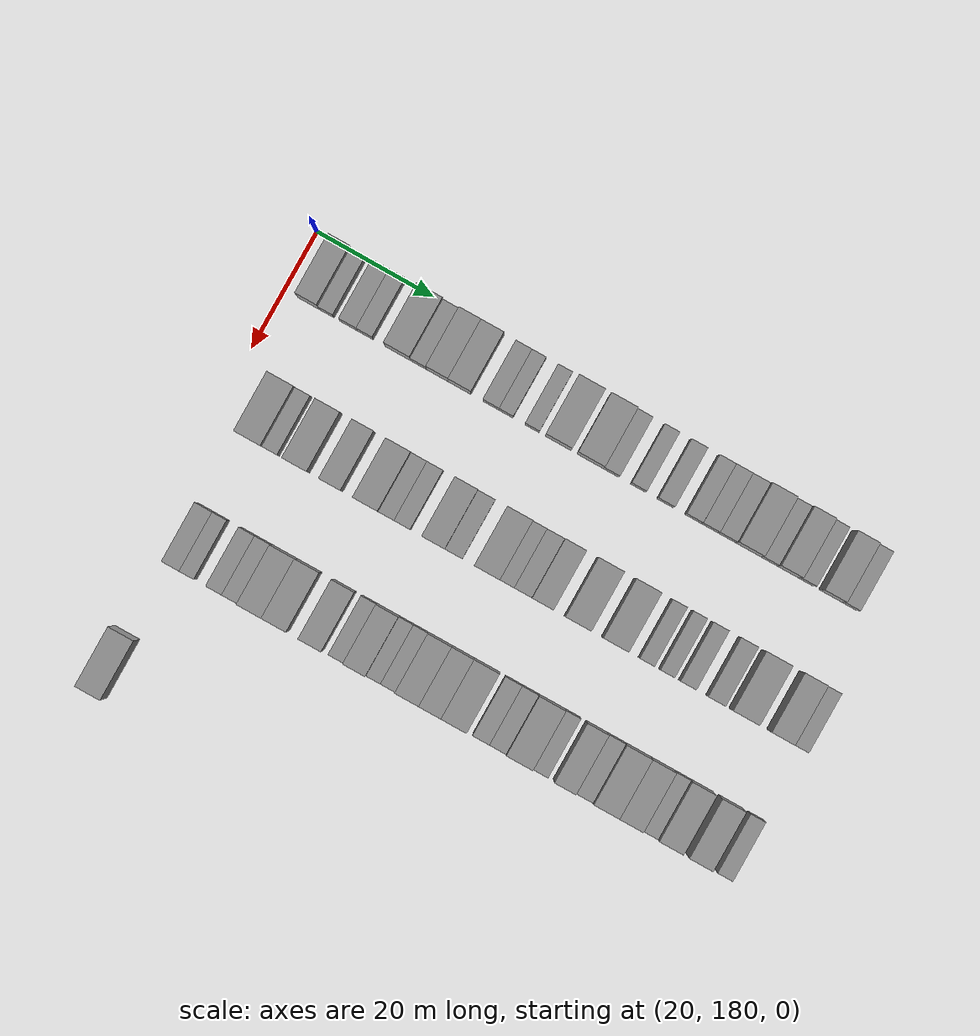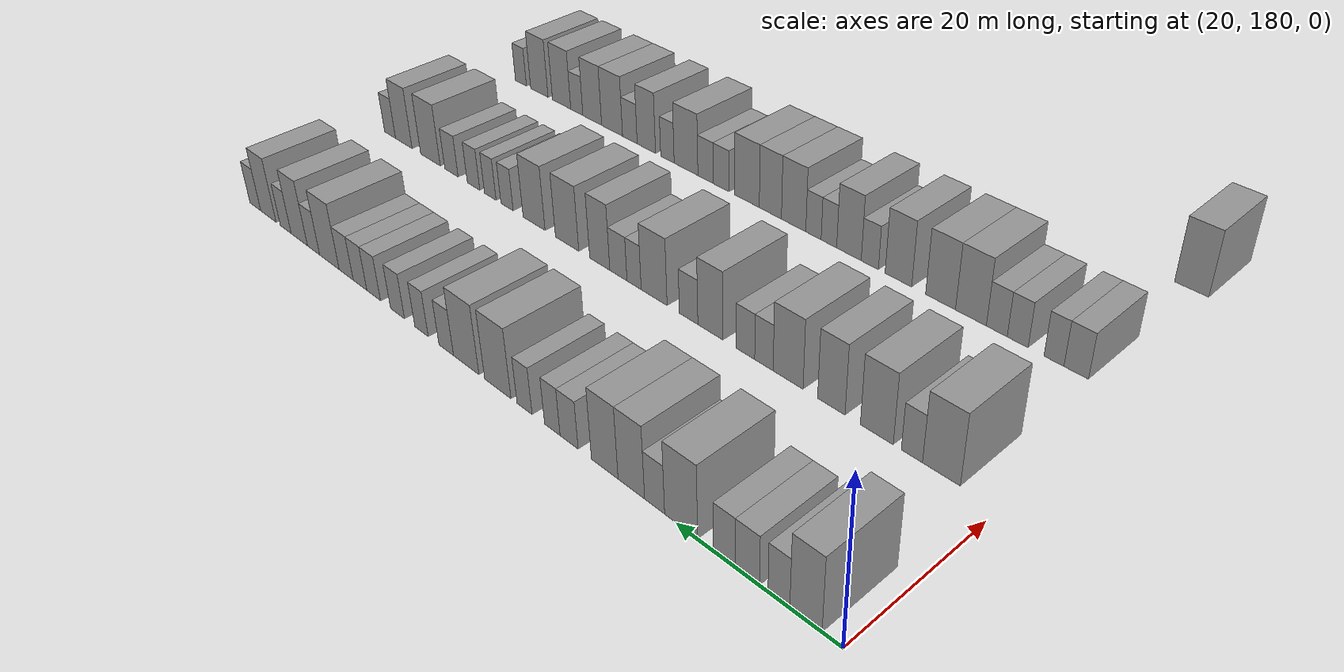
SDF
<sdf version="1.6">
 <world name="default">
  <model name="building_141">
   <static>1</static>
   <pose>25.0000 184.1704 0 0.000000 0.000000 0.000000</pose>
   <link name="link">
    <pose>0 0 4.50 0 0 0</pose>
    <collision name="collision"><geometry><box><size>10.0000 3.6568 9.0000</size></box></geometry></collision>
    <visual name="visual">
     <cast_shadows>0</cast_shadows>
     <geometry><box><size>10.0000 3.6568 9.0000</size></box></geometry>
     <material>
      <script>
       <uri>model://grey_wall/materials/scripts</uri>
       <uri>model://grey_wall/materials/textures</uri>
       <name>vrc/grey_wall</name>
      </script>
     </material>
    </visual>
   </link>
  </model>
  <model name="building_142">
   <static>1</static>
   <pose>25.0000 187.2726 0 0.000000 0.000000 0.000000</pose>
   <link name="link">
    <pose>0 0 3.00 0 0 0</pose>
    <collision name="collision"><geometry><box><size>10.0000 2.5475 6.0000</size></box></geometry></collision>
    <visual name="visual">
     <cast_shadows>0</cast_shadows>
     <geometry><box><size>10.0000 2.5475 6.0000</size></box></geometry>
     <material>
      <script>
       <uri>model://grey_wall/materials/scripts</uri>
       <uri>model://grey_wall/materials/textures</uri>
       <name>vrc/grey_wall</name>
      </script>
     </material>
    </visual>
   </link>
  </model>
  <model name="building_143">
   <static>1</static>
   <pose>25.0000 191.0220 0 0.000000 0.000000 0.000000</pose>
   <link name="link">
    <pose>0 0 3.00 0 0 0</pose>
    <collision name="collision"><geometry><box><size>10.0000 2.9514 6.0000</size></box></geometry></collision>
    <visual name="visual">
     <cast_shadows>0</cast_shadows>
     <geometry><box><size>10.0000 2.9514 6.0000</size></box></geometry>
     <material>
      <script>
       <uri>model://grey_wall/materials/scripts</uri>
       <uri>model://grey_wall/materials/textures</uri>
       <name>vrc/grey_wall</name>
      </script>
     </material>
    </visual>
   </link>
  </model>
  <model name="building_144">
   <static>1</static>
   <pose>25.0000 193.8629 0 0.000000 0.000000 0.000000</pose>
   <link name="link">
    <pose>0 0 3.00 0 0 0</pose>
    <collision name="collision"><geometry><box><size>10.0000 2.7303 6.0000</size></box></geometry></collision>
    <visual name="visual">
     <cast_shadows>0</cast_shadows>
     <geometry><box><size>10.0000 2.7303 6.0000</size></box></geometry>
     <material>
      <script>
       <uri>model://grey_wall/materials/scripts</uri>
       <uri>model://grey_wall/materials/textures</uri>
       <name>vrc/grey_wall</name>
      </script>
     </material>
    </visual>
   </link>
  </model>
  <model name="building_145">
   <static>1</static>
   <pose>25.0000 199.4103 0 0.000000 0.000000 0.000000</pose>
   <link name="link">
    <pose>0 0 4.50 0 0 0</pose>
    <collision name="collision"><geometry><box><size>10.0000 4.3644 9.0000</size></box></geometry></collision>
    <visual name="visual">
     <cast_shadows>0</cast_shadows>
     <geometry><box><size>10.0000 4.3644 9.0000</size></box></geometry>
     <material>
      <script>
       <uri>model://grey_wall/materials/scripts</uri>
       <uri>model://grey_wall/materials/textures</uri>
       <name>vrc/grey_wall</name>
      </script>
     </material>
    </visual>
   </link>
  </model>
  <model name="building_146">
   <static>1</static>
   <pose>25.0000 202.9584 0 0.000000 0.000000 0.000000</pose>
   <link name="link">
    <pose>0 0 3.00 0 0 0</pose>
    <collision name="collision"><geometry><box><size>10.0000 2.7317 6.0000</size></box></geometry></collision>
    <visual name="visual">
     <cast_shadows>0</cast_shadows>
     <geometry><box><size>10.0000 2.7317 6.0000</size></box></geometry>
     <material>
      <script>
       <uri>model://grey_wall/materials/scripts</uri>
       <uri>model://grey_wall/materials/textures</uri>
       <name>vrc/grey_wall</name>
      </script>
     </material>
    </visual>
   </link>
  </model>
  <model name="building_147">
   <static>1</static>
   <pose>25.0000 206.1901 0 0.000000 0.000000 0.000000</pose>
   <link name="link">
    <pose>0 0 4.50 0 0 0</pose>
    <collision name="collision"><geometry><box><size>10.0000 3.7318 9.0000</size></box></geometry></collision>
    <visual name="visual">
     <cast_shadows>0</cast_shadows>
     <geometry><box><size>10.0000 3.7318 9.0000</size></box></geometry>
     <material>
      <script>
       <uri>model://grey_wall/materials/scripts</uri>
       <uri>model://grey_wall/materials/textures</uri>
       <name>vrc/grey_wall</name>
      </script>
     </material>
    </visual>
   </link>
  </model>
  <model name="building_148">
   <static>1</static>
   <pose>25.0000 209.9947 0 0.000000 0.000000 0.000000</pose>
   <link name="link">
    <pose>0 0 4.50 0 0 0</pose>
    <collision name="collision"><geometry><box><size>10.0000 3.8773 9.0000</size></box></geometry></collision>
    <visual name="visual">
     <cast_shadows>0</cast_shadows>
     <geometry><box><size>10.0000 3.8773 9.0000</size></box></geometry>
     <material>
      <script>
       <uri>model://grey_wall/materials/scripts</uri>
       <uri>model://grey_wall/materials/textures</uri>
       <name>vrc/grey_wall</name>
      </script>
     </material>
    </visual>
   </link>
  </model>
  <model name="building_149">
   <static>1</static>
   <pose>25.0000 215.3113 0 0.000000 0.000000 0.000000</pose>
   <link name="link">
    <pose>0 0 3.00 0 0 0</pose>
    <collision name="collision"><geometry><box><size>10.0000 2.7558 6.0000</size></box></geometry></collision>
    <visual name="visual">
     <cast_shadows>0</cast_shadows>
     <geometry><box><size>10.0000 2.7558 6.0000</size></box></geometry>
     <material>
      <script>
       <uri>model://grey_wall/materials/scripts</uri>
       <uri>model://grey_wall/materials/textures</uri>
       <name>vrc/grey_wall</name>
      </script>
     </material>
    </visual>
   </link>
  </model>
  <model name="building_150">
   <static>1</static>
   <pose>25.0000 217.9012 0 0.000000 0.000000 0.000000</pose>
   <link name="link">
    <pose>0 0 3.00 0 0 0</pose>
    <collision name="collision"><geometry><box><size>10.0000 2.4242 6.0000</size></box></geometry></collision>
    <visual name="visual">
     <cast_shadows>0</cast_shadows>
     <geometry><box><size>10.0000 2.4242 6.0000</size></box></geometry>
     <material>
      <script>
       <uri>model://grey_wall/materials/scripts</uri>
       <uri>model://grey_wall/materials/textures</uri>
       <name>vrc/grey_wall</name>
      </script>
     </material>
    </visual>
   </link>
  </model>
  <model name="building_151">
   <static>1</static>
   <pose>25.0000 222.3371 0 0.000000 0.000000 0.000000</pose>
   <link name="link">
    <pose>0 0 3.00 0 0 0</pose>
    <collision name="collision"><geometry><box><size>10.0000 2.4476 6.0000</size></box></geometry></collision>
    <visual name="visual">
     <cast_shadows>0</cast_shadows>
     <geometry><box><size>10.0000 2.4476 6.0000</size></box></geometry>
     <material>
      <script>
       <uri>model://grey_wall/materials/scripts</uri>
       <uri>model://grey_wall/materials/textures</uri>
       <name>vrc/grey_wall</name>
      </script>
     </material>
    </visual>
   </link>
  </model>
  <model name="building_152">
   <static>1</static>
   <pose>25.0000 226.7826 0 0.000000 0.000000 0.000000</pose>
   <link name="link">
    <pose>0 0 4.50 0 0 0</pose>
    <collision name="collision"><geometry><box><size>10.0000 4.4432 9.0000</size></box></geometry></collision>
    <visual name="visual">
     <cast_shadows>0</cast_shadows>
     <geometry><box><size>10.0000 4.4432 9.0000</size></box></geometry>
     <material>
      <script>
       <uri>model://grey_wall/materials/scripts</uri>
       <uri>model://grey_wall/materials/textures</uri>
       <name>vrc/grey_wall</name>
      </script>
     </material>
    </visual>
   </link>
  </model>
  <model name="building_153">
   <static>1</static>
   <pose>25.0000 232.2535 0 0.000000 0.000000 0.000000</pose>
   <link name="link">
    <pose>0 0 4.50 0 0 0</pose>
    <collision name="collision"><geometry><box><size>10.0000 4.4986 9.0000</size></box></geometry></collision>
    <visual name="visual">
     <cast_shadows>0</cast_shadows>
     <geometry><box><size>10.0000 4.4986 9.0000</size></box></geometry>
     <material>
      <script>
       <uri>model://grey_wall/materials/scripts</uri>
       <uri>model://grey_wall/materials/textures</uri>
       <name>vrc/grey_wall</name>
      </script>
     </material>
    </visual>
   </link>
  </model>
  <model name="building_154">
   <static>1</static>
   <pose>25.0000 235.8311 0 0.000000 0.000000 0.000000</pose>
   <link name="link">
    <pose>0 0 3.00 0 0 0</pose>
    <collision name="collision"><geometry><box><size>10.0000 2.6566 6.0000</size></box></geometry></collision>
    <visual name="visual">
     <cast_shadows>0</cast_shadows>
     <geometry><box><size>10.0000 2.6566 6.0000</size></box></geometry>
     <material>
      <script>
       <uri>model://grey_wall/materials/scripts</uri>
       <uri>model://grey_wall/materials/textures</uri>
       <name>vrc/grey_wall</name>
      </script>
     </material>
    </visual>
   </link>
  </model>
  <model name="building_155">
   <static>1</static>
   <pose>25.0000 240.4203 0 0.000000 0.000000 0.000000</pose>
   <link name="link">
    <pose>0 0 3.00 0 0 0</pose>
    <collision name="collision"><geometry><box><size>10.0000 2.5218 6.0000</size></box></geometry></collision>
    <visual name="visual">
     <cast_shadows>0</cast_shadows>
     <geometry><box><size>10.0000 2.5218 6.0000</size></box></geometry>
     <material>
      <script>
       <uri>model://grey_wall/materials/scripts</uri>
       <uri>model://grey_wall/materials/textures</uri>
       <name>vrc/grey_wall</name>
      </script>
     </material>
    </visual>
   </link>
  </model>
  <model name="building_156">
   <static>1</static>
   <pose>25.0000 245.0591 0 0.000000 0.000000 0.000000</pose>
   <link name="link">
    <pose>0 0 3.00 0 0 0</pose>
    <collision name="collision"><geometry><box><size>10.0000 2.7556 6.0000</size></box></geometry></collision>
    <visual name="visual">
     <cast_shadows>0</cast_shadows>
     <geometry><box><size>10.0000 2.7556 6.0000</size></box></geometry>
     <material>
      <script>
       <uri>model://grey_wall/materials/scripts</uri>
       <uri>model://grey_wall/materials/textures</uri>
       <name>vrc/grey_wall</name>
      </script>
     </material>
    </visual>
   </link>
  </model>
  <model name="building_157">
   <static>1</static>
   <pose>25.0000 249.8324 0 0.000000 0.000000 0.000000</pose>
   <link name="link">
    <pose>0 0 3.00 0 0 0</pose>
    <collision name="collision"><geometry><box><size>10.0000 2.7912 6.0000</size></box></geometry></collision>
    <visual name="visual">
     <cast_shadows>0</cast_shadows>
     <geometry><box><size>10.0000 2.7912 6.0000</size></box></geometry>
     <material>
      <script>
       <uri>model://grey_wall/materials/scripts</uri>
       <uri>model://grey_wall/materials/textures</uri>
       <name>vrc/grey_wall</name>
      </script>
     </material>
    </visual>
   </link>
  </model>
  <model name="building_158">
   <static>1</static>
   <pose>25.0000 252.6497 0 0.000000 0.000000 0.000000</pose>
   <link name="link">
    <pose>0 0 3.00 0 0 0</pose>
    <collision name="collision"><geometry><box><size>10.0000 2.8433 6.0000</size></box></geometry></collision>
    <visual name="visual">
     <cast_shadows>0</cast_shadows>
     <geometry><box><size>10.0000 2.8433 6.0000</size></box></geometry>
     <material>
      <script>
       <uri>model://grey_wall/materials/scripts</uri>
       <uri>model://grey_wall/materials/textures</uri>
       <name>vrc/grey_wall</name>
      </script>
     </material>
    </visual>
   </link>
  </model>
  <model name="building_159">
   <static>1</static>
   <pose>25.0000 255.5650 0 0.000000 0.000000 0.000000</pose>
   <link name="link">
    <pose>0 0 3.00 0 0 0</pose>
    <collision name="collision"><geometry><box><size>10.0000 2.9873 6.0000</size></box></geometry></collision>
    <visual name="visual">
     <cast_shadows>0</cast_shadows>
     <geometry><box><size>10.0000 2.9873 6.0000</size></box></geometry>
     <material>
      <script>
       <uri>model://grey_wall/materials/scripts</uri>
       <uri>model://grey_wall/materials/textures</uri>
       <name>vrc/grey_wall</name>
      </script>
     </material>
    </visual>
   </link>
  </model>
  <model name="building_160">
   <static>1</static>
   <pose>25.0000 259.2042 0 0.000000 0.000000 0.000000</pose>
   <link name="link">
    <pose>0 0 4.50 0 0 0</pose>
    <collision name="collision"><geometry><box><size>10.0000 4.2912 9.0000</size></box></geometry></collision>
    <visual name="visual">
     <cast_shadows>0</cast_shadows>
     <geometry><box><size>10.0000 4.2912 9.0000</size></box></geometry>
     <material>
      <script>
       <uri>model://grey_wall/materials/scripts</uri>
       <uri>model://grey_wall/materials/textures</uri>
       <name>vrc/grey_wall</name>
      </script>
     </material>
    </visual>
   </link>
  </model>
  <model name="building_161">
   <static>1</static>
   <pose>25.0000 262.7184 0 0.000000 0.000000 0.000000</pose>
   <link name="link">
    <pose>0 0 3.00 0 0 0</pose>
    <collision name="collision"><geometry><box><size>10.0000 2.7372 6.0000</size></box></geometry></collision>
    <visual name="visual">
     <cast_shadows>0</cast_shadows>
     <geometry><box><size>10.0000 2.7372 6.0000</size></box></geometry>
     <material>
      <script>
       <uri>model://grey_wall/materials/scripts</uri>
       <uri>model://grey_wall/materials/textures</uri>
       <name>vrc/grey_wall</name>
      </script>
     </material>
    </visual>
   </link>
  </model>
  <model name="building_162">
   <static>1</static>
   <pose>25.0000 265.9661 0 0.000000 0.000000 0.000000</pose>
   <link name="link">
    <pose>0 0 4.50 0 0 0</pose>
    <collision name="collision"><geometry><box><size>10.0000 3.7582 9.0000</size></box></geometry></collision>
    <visual name="visual">
     <cast_shadows>0</cast_shadows>
     <geometry><box><size>10.0000 3.7582 9.0000</size></box></geometry>
     <material>
      <script>
       <uri>model://grey_wall/materials/scripts</uri>
       <uri>model://grey_wall/materials/textures</uri>
       <name>vrc/grey_wall</name>
      </script>
     </material>
    </visual>
   </link>
  </model>
  <model name="building_163">
   <static>1</static>
   <pose>25.0000 269.1298 0 0.000000 0.000000 0.000000</pose>
   <link name="link">
    <pose>0 0 3.00 0 0 0</pose>
    <collision name="collision"><geometry><box><size>10.0000 2.5691 6.0000</size></box></geometry></collision>
    <visual name="visual">
     <cast_shadows>0</cast_shadows>
     <geometry><box><size>10.0000 2.5691 6.0000</size></box></geometry>
     <material>
      <script>
       <uri>model://grey_wall/materials/scripts</uri>
       <uri>model://grey_wall/materials/textures</uri>
       <name>vrc/grey_wall</name>
      </script>
     </material>
    </visual>
   </link>
  </model>
  <model name="building_164">
   <static>1</static>
   <pose>25.0000 273.2810 0 0.000000 0.000000 0.000000</pose>
   <link name="link">
    <pose>0 0 4.50 0 0 0</pose>
    <collision name="collision"><geometry><box><size>10.0000 3.7334 9.0000</size></box></geometry></collision>
    <visual name="visual">
     <cast_shadows>0</cast_shadows>
     <geometry><box><size>10.0000 3.7334 9.0000</size></box></geometry>
     <material>
      <script>
       <uri>model://grey_wall/materials/scripts</uri>
       <uri>model://grey_wall/materials/textures</uri>
       <name>vrc/grey_wall</name>
      </script>
     </material>
    </visual>
   </link>
  </model>
  <model name="building_165">
   <static>1</static>
   <pose>25.0000 276.4773 0 0.000000 0.000000 0.000000</pose>
   <link name="link">
    <pose>0 0 3.00 0 0 0</pose>
    <collision name="collision"><geometry><box><size>10.0000 2.6591 6.0000</size></box></geometry></collision>
    <visual name="visual">
     <cast_shadows>0</cast_shadows>
     <geometry><box><size>10.0000 2.6591 6.0000</size></box></geometry>
     <material>
      <script>
       <uri>model://grey_wall/materials/scripts</uri>
       <uri>model://grey_wall/materials/textures</uri>
       <name>vrc/grey_wall</name>
      </script>
     </material>
    </visual>
   </link>
  </model>
  <model name="building_336">
   <static>1</static>
   <pose>47.0000 186.6456 0 0.000000 0.000000 0.000000</pose>
   <link name="link">
    <pose>0 0 4.50 0 0 0</pose>
    <collision name="collision"><geometry><box><size>10.0000 4.4907 9.0000</size></box></geometry></collision>
    <visual name="visual">
     <cast_shadows>0</cast_shadows>
     <geometry><box><size>10.0000 4.4907 9.0000</size></box></geometry>
     <material>
      <script>
       <uri>model://grey_wall/materials/scripts</uri>
       <uri>model://grey_wall/materials/textures</uri>
       <name>vrc/grey_wall</name>
      </script>
     </material>
    </visual>
   </link>
  </model>
  <model name="building_337">
   <static>1</static>
   <pose>47.0000 190.1841 0 0.000000 0.000000 0.000000</pose>
   <link name="link">
    <pose>0 0 3.00 0 0 0</pose>
    <collision name="collision"><geometry><box><size>10.0000 2.5864 6.0000</size></box></geometry></collision>
    <visual name="visual">
     <cast_shadows>0</cast_shadows>
     <geometry><box><size>10.0000 2.5864 6.0000</size></box></geometry>
     <material>
      <script>
       <uri>model://grey_wall/materials/scripts</uri>
       <uri>model://grey_wall/materials/textures</uri>
       <name>vrc/grey_wall</name>
      </script>
     </material>
    </visual>
   </link>
  </model>
  <model name="building_338">
   <static>1</static>
   <pose>47.0000 194.5684 0 0.000000 0.000000 0.000000</pose>
   <link name="link">
    <pose>0 0 4.50 0 0 0</pose>
    <collision name="collision"><geometry><box><size>10.0000 4.1822 9.0000</size></box></geometry></collision>
    <visual name="visual">
     <cast_shadows>0</cast_shadows>
     <geometry><box><size>10.0000 4.1822 9.0000</size></box></geometry>
     <material>
      <script>
       <uri>model://grey_wall/materials/scripts</uri>
       <uri>model://grey_wall/materials/textures</uri>
       <name>vrc/grey_wall</name>
      </script>
     </material>
    </visual>
   </link>
  </model>
  <model name="building_339">
   <static>1</static>
   <pose>47.0000 200.4982 0 0.000000 0.000000 0.000000</pose>
   <link name="link">
    <pose>0 0 4.50 0 0 0</pose>
    <collision name="collision"><geometry><box><size>10.0000 3.6774 9.0000</size></box></geometry></collision>
    <visual name="visual">
     <cast_shadows>0</cast_shadows>
     <geometry><box><size>10.0000 3.6774 9.0000</size></box></geometry>
     <material>
      <script>
       <uri>model://grey_wall/materials/scripts</uri>
       <uri>model://grey_wall/materials/textures</uri>
       <name>vrc/grey_wall</name>
      </script>
     </material>
    </visual>
   </link>
  </model>
  <model name="building_340">
   <static>1</static>
   <pose>47.0000 206.4493 0 0.000000 0.000000 0.000000</pose>
   <link name="link">
    <pose>0 0 4.50 0 0 0</pose>
    <collision name="collision"><geometry><box><size>10.0000 4.2248 9.0000</size></box></geometry></collision>
    <visual name="visual">
     <cast_shadows>0</cast_shadows>
     <geometry><box><size>10.0000 4.2248 9.0000</size></box></geometry>
     <material>
      <script>
       <uri>model://grey_wall/materials/scripts</uri>
       <uri>model://grey_wall/materials/textures</uri>
       <name>vrc/grey_wall</name>
      </script>
     </material>
    </visual>
   </link>
  </model>
  <model name="building_341">
   <static>1</static>
   <pose>47.0000 209.8967 0 0.000000 0.000000 0.000000</pose>
   <link name="link">
    <pose>0 0 3.00 0 0 0</pose>
    <collision name="collision"><geometry><box><size>10.0000 2.6700 6.0000</size></box></geometry></collision>
    <visual name="visual">
     <cast_shadows>0</cast_shadows>
     <geometry><box><size>10.0000 2.6700 6.0000</size></box></geometry>
     <material>
      <script>
       <uri>model://grey_wall/materials/scripts</uri>
       <uri>model://grey_wall/materials/textures</uri>
       <name>vrc/grey_wall</name>
      </script>
     </material>
    </visual>
   </link>
  </model>
  <model name="building_342">
   <static>1</static>
   <pose>47.0000 212.6028 0 0.000000 0.000000 0.000000</pose>
   <link name="link">
    <pose>0 0 3.00 0 0 0</pose>
    <collision name="collision"><geometry><box><size>10.0000 2.7420 6.0000</size></box></geometry></collision>
    <visual name="visual">
     <cast_shadows>0</cast_shadows>
     <geometry><box><size>10.0000 2.7420 6.0000</size></box></geometry>
     <material>
      <script>
       <uri>model://grey_wall/materials/scripts</uri>
       <uri>model://grey_wall/materials/textures</uri>
       <name>vrc/grey_wall</name>
      </script>
     </material>
    </visual>
   </link>
  </model>
  <model name="building_343">
   <static>1</static>
   <pose>47.0000 217.9217 0 0.000000 0.000000 0.000000</pose>
   <link name="link">
    <pose>0 0 4.50 0 0 0</pose>
    <collision name="collision"><geometry><box><size>10.0000 3.8960 9.0000</size></box></geometry></collision>
    <visual name="visual">
     <cast_shadows>0</cast_shadows>
     <geometry><box><size>10.0000 3.8960 9.0000</size></box></geometry>
     <material>
      <script>
       <uri>model://grey_wall/materials/scripts</uri>
       <uri>model://grey_wall/materials/textures</uri>
       <name>vrc/grey_wall</name>
      </script>
     </material>
    </visual>
   </link>
  </model>
  <model name="building_344">
   <static>1</static>
   <pose>47.0000 221.3405 0 0.000000 0.000000 0.000000</pose>
   <link name="link">
    <pose>0 0 3.00 0 0 0</pose>
    <collision name="collision"><geometry><box><size>10.0000 2.9415 6.0000</size></box></geometry></collision>
    <visual name="visual">
     <cast_shadows>0</cast_shadows>
     <geometry><box><size>10.0000 2.9415 6.0000</size></box></geometry>
     <material>
      <script>
       <uri>model://grey_wall/materials/scripts</uri>
       <uri>model://grey_wall/materials/textures</uri>
       <name>vrc/grey_wall</name>
      </script>
     </material>
    </visual>
   </link>
  </model>
  <model name="building_345">
   <static>1</static>
   <pose>47.0000 226.9701 0 0.000000 0.000000 0.000000</pose>
   <link name="link">
    <pose>0 0 4.50 0 0 0</pose>
    <collision name="collision"><geometry><box><size>10.0000 4.3176 9.0000</size></box></geometry></collision>
    <visual name="visual">
     <cast_shadows>0</cast_shadows>
     <geometry><box><size>10.0000 4.3176 9.0000</size></box></geometry>
     <material>
      <script>
       <uri>model://grey_wall/materials/scripts</uri>
       <uri>model://grey_wall/materials/textures</uri>
       <name>vrc/grey_wall</name>
      </script>
     </material>
    </visual>
   </link>
  </model>
  <model name="building_346">
   <static>1</static>
   <pose>47.0000 230.3441 0 0.000000 0.000000 0.000000</pose>
   <link name="link">
    <pose>0 0 3.00 0 0 0</pose>
    <collision name="collision"><geometry><box><size>10.0000 2.4305 6.0000</size></box></geometry></collision>
    <visual name="visual">
     <cast_shadows>0</cast_shadows>
     <geometry><box><size>10.0000 2.4305 6.0000</size></box></geometry>
     <material>
      <script>
       <uri>model://grey_wall/materials/scripts</uri>
       <uri>model://grey_wall/materials/textures</uri>
       <name>vrc/grey_wall</name>
      </script>
     </material>
    </visual>
   </link>
  </model>
  <model name="building_347">
   <static>1</static>
   <pose>47.0000 233.0564 0 0.000000 0.000000 0.000000</pose>
   <link name="link">
    <pose>0 0 3.00 0 0 0</pose>
    <collision name="collision"><geometry><box><size>10.0000 2.9942 6.0000</size></box></geometry></collision>
    <visual name="visual">
     <cast_shadows>0</cast_shadows>
     <geometry><box><size>10.0000 2.9942 6.0000</size></box></geometry>
     <material>
      <script>
       <uri>model://grey_wall/materials/scripts</uri>
       <uri>model://grey_wall/materials/textures</uri>
       <name>vrc/grey_wall</name>
      </script>
     </material>
    </visual>
   </link>
  </model>
  <model name="building_348">
   <static>1</static>
   <pose>47.0000 236.3539 0 0.000000 0.000000 0.000000</pose>
   <link name="link">
    <pose>0 0 4.50 0 0 0</pose>
    <collision name="collision"><geometry><box><size>10.0000 3.6007 9.0000</size></box></geometry></collision>
    <visual name="visual">
     <cast_shadows>0</cast_shadows>
     <geometry><box><size>10.0000 3.6007 9.0000</size></box></geometry>
     <material>
      <script>
       <uri>model://grey_wall/materials/scripts</uri>
       <uri>model://grey_wall/materials/textures</uri>
       <name>vrc/grey_wall</name>
      </script>
     </material>
    </visual>
   </link>
  </model>
  <model name="building_349">
   <static>1</static>
   <pose>47.0000 242.3327 0 0.000000 0.000000 0.000000</pose>
   <link name="link">
    <pose>0 0 4.50 0 0 0</pose>
    <collision name="collision"><geometry><box><size>10.0000 4.3569 9.0000</size></box></geometry></collision>
    <visual name="visual">
     <cast_shadows>0</cast_shadows>
     <geometry><box><size>10.0000 4.3569 9.0000</size></box></geometry>
     <material>
      <script>
       <uri>model://grey_wall/materials/scripts</uri>
       <uri>model://grey_wall/materials/textures</uri>
       <name>vrc/grey_wall</name>
      </script>
     </material>
    </visual>
   </link>
  </model>
  <model name="building_350">
   <static>1</static>
   <pose>47.0000 248.6556 0 0.000000 0.000000 0.000000</pose>
   <link name="link">
    <pose>0 0 4.50 0 0 0</pose>
    <collision name="collision"><geometry><box><size>10.0000 4.2888 9.0000</size></box></geometry></collision>
    <visual name="visual">
     <cast_shadows>0</cast_shadows>
     <geometry><box><size>10.0000 4.2888 9.0000</size></box></geometry>
     <material>
      <script>
       <uri>model://grey_wall/materials/scripts</uri>
       <uri>model://grey_wall/materials/textures</uri>
       <name>vrc/grey_wall</name>
      </script>
     </material>
    </visual>
   </link>
  </model>
  <model name="building_351">
   <static>1</static>
   <pose>47.0000 254.0440 0 0.000000 0.000000 0.000000</pose>
   <link name="link">
    <pose>0 0 3.00 0 0 0</pose>
    <collision name="collision"><geometry><box><size>10.0000 2.4880 6.0000</size></box></geometry></collision>
    <visual name="visual">
     <cast_shadows>0</cast_shadows>
     <geometry><box><size>10.0000 2.4880 6.0000</size></box></geometry>
     <material>
      <script>
       <uri>model://grey_wall/materials/scripts</uri>
       <uri>model://grey_wall/materials/textures</uri>
       <name>vrc/grey_wall</name>
      </script>
     </material>
    </visual>
   </link>
  </model>
  <model name="building_352">
   <static>1</static>
   <pose>47.0000 257.4914 0 0.000000 0.000000 0.000000</pose>
   <link name="link">
    <pose>0 0 3.00 0 0 0</pose>
    <collision name="collision"><geometry><box><size>10.0000 2.4069 6.0000</size></box></geometry></collision>
    <visual name="visual">
     <cast_shadows>0</cast_shadows>
     <geometry><box><size>10.0000 2.4069 6.0000</size></box></geometry>
     <material>
      <script>
       <uri>model://grey_wall/materials/scripts</uri>
       <uri>model://grey_wall/materials/textures</uri>
       <name>vrc/grey_wall</name>
      </script>
     </material>
    </visual>
   </link>
  </model>
  <model name="building_353">
   <static>1</static>
   <pose>47.0000 261.0275 0 0.000000 0.000000 0.000000</pose>
   <link name="link">
    <pose>0 0 3.00 0 0 0</pose>
    <collision name="collision"><geometry><box><size>10.0000 2.6653 6.0000</size></box></geometry></collision>
    <visual name="visual">
     <cast_shadows>0</cast_shadows>
     <geometry><box><size>10.0000 2.6653 6.0000</size></box></geometry>
     <material>
      <script>
       <uri>model://grey_wall/materials/scripts</uri>
       <uri>model://grey_wall/materials/textures</uri>
       <name>vrc/grey_wall</name>
      </script>
     </material>
    </visual>
   </link>
  </model>
  <model name="building_354">
   <static>1</static>
   <pose>47.0000 265.8358 0 0.000000 0.000000 0.000000</pose>
   <link name="link">
    <pose>0 0 3.00 0 0 0</pose>
    <collision name="collision"><geometry><box><size>10.0000 2.9512 6.0000</size></box></geometry></collision>
    <visual name="visual">
     <cast_shadows>0</cast_shadows>
     <geometry><box><size>10.0000 2.9512 6.0000</size></box></geometry>
     <material>
      <script>
       <uri>model://grey_wall/materials/scripts</uri>
       <uri>model://grey_wall/materials/textures</uri>
       <name>vrc/grey_wall</name>
      </script>
     </material>
    </visual>
   </link>
  </model>
  <model name="building_355">
   <static>1</static>
   <pose>47.0000 270.5517 0 0.000000 0.000000 0.000000</pose>
   <link name="link">
    <pose>0 0 4.50 0 0 0</pose>
    <collision name="collision"><geometry><box><size>10.0000 4.4806 9.0000</size></box></geometry></collision>
    <visual name="visual">
     <cast_shadows>0</cast_shadows>
     <geometry><box><size>10.0000 4.4806 9.0000</size></box></geometry>
     <material>
      <script>
       <uri>model://grey_wall/materials/scripts</uri>
       <uri>model://grey_wall/materials/textures</uri>
       <name>vrc/grey_wall</name>
      </script>
     </material>
    </visual>
   </link>
  </model>
  <model name="building_356">
   <static>1</static>
   <pose>47.0000 276.7595 0 0.000000 0.000000 0.000000</pose>
   <link name="link">
    <pose>0 0 4.50 0 0 0</pose>
    <collision name="collision"><geometry><box><size>10.0000 3.9350 9.0000</size></box></geometry></collision>
    <visual name="visual">
     <cast_shadows>0</cast_shadows>
     <geometry><box><size>10.0000 3.9350 9.0000</size></box></geometry>
     <material>
      <script>
       <uri>model://grey_wall/materials/scripts</uri>
       <uri>model://grey_wall/materials/textures</uri>
       <name>vrc/grey_wall</name>
      </script>
     </material>
    </visual>
   </link>
  </model>
  <model name="building_357">
   <static>1</static>
   <pose>47.0000 280.0479 0 0.000000 0.000000 0.000000</pose>
   <link name="link">
    <pose>0 0 3.00 0 0 0</pose>
    <collision name="collision"><geometry><box><size>10.0000 2.6418 6.0000</size></box></geometry></collision>
    <visual name="visual">
     <cast_shadows>0</cast_shadows>
     <geometry><box><size>10.0000 2.6418 6.0000</size></box></geometry>
     <material>
      <script>
       <uri>model://grey_wall/materials/scripts</uri>
       <uri>model://grey_wall/materials/textures</uri>
       <name>vrc/grey_wall</name>
      </script>
     </material>
    </visual>
   </link>
  </model>
  <model name="building_518">
   <static>1</static>
   <pose>69.0000 185.7553 0 0.000000 0.000000 0.000000</pose>
   <link name="link">
    <pose>0 0 3.00 0 0 0</pose>
    <collision name="collision"><geometry><box><size>10.0000 2.9875 6.0000</size></box></geometry></collision>
    <visual name="visual">
     <cast_shadows>0</cast_shadows>
     <geometry><box><size>10.0000 2.9875 6.0000</size></box></geometry>
     <material>
      <script>
       <uri>model://grey_wall/materials/scripts</uri>
       <uri>model://grey_wall/materials/textures</uri>
       <name>vrc/grey_wall</name>
      </script>
     </material>
    </visual>
   </link>
  </model>
  <model name="building_519">
   <static>1</static>
   <pose>69.0000 188.4842 0 0.000000 0.000000 0.000000</pose>
   <link name="link">
    <pose>0 0 3.00 0 0 0</pose>
    <collision name="collision"><geometry><box><size>10.0000 2.4703 6.0000</size></box></geometry></collision>
    <visual name="visual">
     <cast_shadows>0</cast_shadows>
     <geometry><box><size>10.0000 2.4703 6.0000</size></box></geometry>
     <material>
      <script>
       <uri>model://grey_wall/materials/scripts</uri>
       <uri>model://grey_wall/materials/textures</uri>
       <name>vrc/grey_wall</name>
      </script>
     </material>
    </visual>
   </link>
  </model>
  <model name="building_520">
   <static>1</static>
   <pose>69.0000 193.0669 0 0.000000 0.000000 0.000000</pose>
   <link name="link">
    <pose>0 0 3.00 0 0 0</pose>
    <collision name="collision"><geometry><box><size>10.0000 2.6953 6.0000</size></box></geometry></collision>
    <visual name="visual">
     <cast_shadows>0</cast_shadows>
     <geometry><box><size>10.0000 2.6953 6.0000</size></box></geometry>
     <material>
      <script>
       <uri>model://grey_wall/materials/scripts</uri>
       <uri>model://grey_wall/materials/textures</uri>
       <name>vrc/grey_wall</name>
      </script>
     </material>
    </visual>
   </link>
  </model>
  <model name="building_521">
   <static>1</static>
   <pose>69.0000 195.7864 0 0.000000 0.000000 0.000000</pose>
   <link name="link">
    <pose>0 0 3.00 0 0 0</pose>
    <collision name="collision"><geometry><box><size>10.0000 2.7437 6.0000</size></box></geometry></collision>
    <visual name="visual">
     <cast_shadows>0</cast_shadows>
     <geometry><box><size>10.0000 2.7437 6.0000</size></box></geometry>
     <material>
      <script>
       <uri>model://grey_wall/materials/scripts</uri>
       <uri>model://grey_wall/materials/textures</uri>
       <name>vrc/grey_wall</name>
      </script>
     </material>
    </visual>
   </link>
  </model>
  <model name="building_522">
   <static>1</static>
   <pose>69.0000 199.2477 0 0.000000 0.000000 0.000000</pose>
   <link name="link">
    <pose>0 0 4.50 0 0 0</pose>
    <collision name="collision"><geometry><box><size>10.0000 4.1790 9.0000</size></box></geometry></collision>
    <visual name="visual">
     <cast_shadows>0</cast_shadows>
     <geometry><box><size>10.0000 4.1790 9.0000</size></box></geometry>
     <material>
      <script>
       <uri>model://grey_wall/materials/scripts</uri>
       <uri>model://grey_wall/materials/textures</uri>
       <name>vrc/grey_wall</name>
      </script>
     </material>
    </visual>
   </link>
  </model>
  <model name="building_523">
   <static>1</static>
   <pose>69.0000 203.4249 0 0.000000 0.000000 0.000000</pose>
   <link name="link">
    <pose>0 0 4.50 0 0 0</pose>
    <collision name="collision"><geometry><box><size>10.0000 4.1753 9.0000</size></box></geometry></collision>
    <visual name="visual">
     <cast_shadows>0</cast_shadows>
     <geometry><box><size>10.0000 4.1753 9.0000</size></box></geometry>
     <material>
      <script>
       <uri>model://grey_wall/materials/scripts</uri>
       <uri>model://grey_wall/materials/textures</uri>
       <name>vrc/grey_wall</name>
      </script>
     </material>
    </visual>
   </link>
  </model>
  <model name="building_524">
   <static>1</static>
   <pose>69.0000 209.4584 0 0.000000 0.000000 0.000000</pose>
   <link name="link">
    <pose>0 0 4.50 0 0 0</pose>
    <collision name="collision"><geometry><box><size>10.0000 3.8915 9.0000</size></box></geometry></collision>
    <visual name="visual">
     <cast_shadows>0</cast_shadows>
     <geometry><box><size>10.0000 3.8915 9.0000</size></box></geometry>
     <material>
      <script>
       <uri>model://grey_wall/materials/scripts</uri>
       <uri>model://grey_wall/materials/textures</uri>
       <name>vrc/grey_wall</name>
      </script>
     </material>
    </visual>
   </link>
  </model>
  <model name="building_525">
   <static>1</static>
   <pose>69.0000 213.7039 0 0.000000 0.000000 0.000000</pose>
   <link name="link">
    <pose>0 0 3.00 0 0 0</pose>
    <collision name="collision"><geometry><box><size>10.0000 2.5994 6.0000</size></box></geometry></collision>
    <visual name="visual">
     <cast_shadows>0</cast_shadows>
     <geometry><box><size>10.0000 2.5994 6.0000</size></box></geometry>
     <material>
      <script>
       <uri>model://grey_wall/materials/scripts</uri>
       <uri>model://grey_wall/materials/textures</uri>
       <name>vrc/grey_wall</name>
      </script>
     </material>
    </visual>
   </link>
  </model>
  <model name="building_526">
   <static>1</static>
   <pose>69.0000 216.9091 0 0.000000 0.000000 0.000000</pose>
   <link name="link">
    <pose>0 0 4.50 0 0 0</pose>
    <collision name="collision"><geometry><box><size>10.0000 3.8111 9.0000</size></box></geometry></collision>
    <visual name="visual">
     <cast_shadows>0</cast_shadows>
     <geometry><box><size>10.0000 3.8111 9.0000</size></box></geometry>
     <material>
      <script>
       <uri>model://grey_wall/materials/scripts</uri>
       <uri>model://grey_wall/materials/textures</uri>
       <name>vrc/grey_wall</name>
      </script>
     </material>
    </visual>
   </link>
  </model>
  <model name="building_527">
   <static>1</static>
   <pose>69.0000 220.0441 0 0.000000 0.000000 0.000000</pose>
   <link name="link">
    <pose>0 0 3.00 0 0 0</pose>
    <collision name="collision"><geometry><box><size>10.0000 2.4589 6.0000</size></box></geometry></collision>
    <visual name="visual">
     <cast_shadows>0</cast_shadows>
     <geometry><box><size>10.0000 2.4589 6.0000</size></box></geometry>
     <material>
      <script>
       <uri>model://grey_wall/materials/scripts</uri>
       <uri>model://grey_wall/materials/textures</uri>
       <name>vrc/grey_wall</name>
      </script>
     </material>
    </visual>
   </link>
  </model>
  <model name="building_528">
   <static>1</static>
   <pose>69.0000 222.5112 0 0.000000 0.000000 0.000000</pose>
   <link name="link">
    <pose>0 0 3.00 0 0 0</pose>
    <collision name="collision"><geometry><box><size>10.0000 2.4752 6.0000</size></box></geometry></collision>
    <visual name="visual">
     <cast_shadows>0</cast_shadows>
     <geometry><box><size>10.0000 2.4752 6.0000</size></box></geometry>
     <material>
      <script>
       <uri>model://grey_wall/materials/scripts</uri>
       <uri>model://grey_wall/materials/textures</uri>
       <name>vrc/grey_wall</name>
      </script>
     </material>
    </visual>
   </link>
  </model>
  <model name="building_529">
   <static>1</static>
   <pose>69.0000 225.7637 0 0.000000 0.000000 0.000000</pose>
   <link name="link">
    <pose>0 0 4.50 0 0 0</pose>
    <collision name="collision"><geometry><box><size>10.0000 4.0299 9.0000</size></box></geometry></collision>
    <visual name="visual">
     <cast_shadows>0</cast_shadows>
     <geometry><box><size>10.0000 4.0299 9.0000</size></box></geometry>
     <material>
      <script>
       <uri>model://grey_wall/materials/scripts</uri>
       <uri>model://grey_wall/materials/textures</uri>
       <name>vrc/grey_wall</name>
      </script>
     </material>
    </visual>
   </link>
  </model>
  <model name="building_530">
   <static>1</static>
   <pose>69.0000 229.6582 0 0.000000 0.000000 0.000000</pose>
   <link name="link">
    <pose>0 0 4.50 0 0 0</pose>
    <collision name="collision"><geometry><box><size>10.0000 3.7591 9.0000</size></box></geometry></collision>
    <visual name="visual">
     <cast_shadows>0</cast_shadows>
     <geometry><box><size>10.0000 3.7591 9.0000</size></box></geometry>
     <material>
      <script>
       <uri>model://grey_wall/materials/scripts</uri>
       <uri>model://grey_wall/materials/textures</uri>
       <name>vrc/grey_wall</name>
      </script>
     </material>
    </visual>
   </link>
  </model>
  <model name="building_531">
   <static>1</static>
   <pose>69.0000 233.6946 0 0.000000 0.000000 0.000000</pose>
   <link name="link">
    <pose>0 0 4.50 0 0 0</pose>
    <collision name="collision"><geometry><box><size>10.0000 4.3137 9.0000</size></box></geometry></collision>
    <visual name="visual">
     <cast_shadows>0</cast_shadows>
     <geometry><box><size>10.0000 4.3137 9.0000</size></box></geometry>
     <material>
      <script>
       <uri>model://grey_wall/materials/scripts</uri>
       <uri>model://grey_wall/materials/textures</uri>
       <name>vrc/grey_wall</name>
      </script>
     </material>
    </visual>
   </link>
  </model>
  <model name="building_532">
   <static>1</static>
   <pose>69.0000 238.2735 0 0.000000 0.000000 0.000000</pose>
   <link name="link">
    <pose>0 0 3.00 0 0 0</pose>
    <collision name="collision"><geometry><box><size>10.0000 2.8442 6.0000</size></box></geometry></collision>
    <visual name="visual">
     <cast_shadows>0</cast_shadows>
     <geometry><box><size>10.0000 2.8442 6.0000</size></box></geometry>
     <material>
      <script>
       <uri>model://grey_wall/materials/scripts</uri>
       <uri>model://grey_wall/materials/textures</uri>
       <name>vrc/grey_wall</name>
      </script>
     </material>
    </visual>
   </link>
  </model>
  <model name="building_533">
   <static>1</static>
   <pose>69.0000 241.1104 0 0.000000 0.000000 0.000000</pose>
   <link name="link">
    <pose>0 0 3.00 0 0 0</pose>
    <collision name="collision"><geometry><box><size>10.0000 2.8296 6.0000</size></box></geometry></collision>
    <visual name="visual">
     <cast_shadows>0</cast_shadows>
     <geometry><box><size>10.0000 2.8296 6.0000</size></box></geometry>
     <material>
      <script>
       <uri>model://grey_wall/materials/scripts</uri>
       <uri>model://grey_wall/materials/textures</uri>
       <name>vrc/grey_wall</name>
      </script>
     </material>
    </visual>
   </link>
  </model>
  <model name="building_534">
   <static>1</static>
   <pose>69.0000 244.7649 0 0.000000 0.000000 0.000000</pose>
   <link name="link">
    <pose>0 0 4.50 0 0 0</pose>
    <collision name="collision"><geometry><box><size>10.0000 4.4792 9.0000</size></box></geometry></collision>
    <visual name="visual">
     <cast_shadows>0</cast_shadows>
     <geometry><box><size>10.0000 4.4792 9.0000</size></box></geometry>
     <material>
      <script>
       <uri>model://grey_wall/materials/scripts</uri>
       <uri>model://grey_wall/materials/textures</uri>
       <name>vrc/grey_wall</name>
      </script>
     </material>
    </visual>
   </link>
  </model>
  <model name="building_535">
   <static>1</static>
   <pose>69.0000 248.3080 0 0.000000 0.000000 0.000000</pose>
   <link name="link">
    <pose>0 0 3.00 0 0 0</pose>
    <collision name="collision"><geometry><box><size>10.0000 2.6070 6.0000</size></box></geometry></collision>
    <visual name="visual">
     <cast_shadows>0</cast_shadows>
     <geometry><box><size>10.0000 2.6070 6.0000</size></box></geometry>
     <material>
      <script>
       <uri>model://grey_wall/materials/scripts</uri>
       <uri>model://grey_wall/materials/textures</uri>
       <name>vrc/grey_wall</name>
      </script>
     </material>
    </visual>
   </link>
  </model>
  <model name="building_536">
   <static>1</static>
   <pose>69.0000 252.4339 0 0.000000 0.000000 0.000000</pose>
   <link name="link">
    <pose>0 0 4.50 0 0 0</pose>
    <collision name="collision"><geometry><box><size>10.0000 3.6448 9.0000</size></box></geometry></collision>
    <visual name="visual">
     <cast_shadows>0</cast_shadows>
     <geometry><box><size>10.0000 3.6448 9.0000</size></box></geometry>
     <material>
      <script>
       <uri>model://grey_wall/materials/scripts</uri>
       <uri>model://grey_wall/materials/textures</uri>
       <name>vrc/grey_wall</name>
      </script>
     </material>
    </visual>
   </link>
  </model>
  <model name="building_537">
   <static>1</static>
   <pose>69.0000 255.7431 0 0.000000 0.000000 0.000000</pose>
   <link name="link">
    <pose>0 0 3.00 0 0 0</pose>
    <collision name="collision"><geometry><box><size>10.0000 2.9737 6.0000</size></box></geometry></collision>
    <visual name="visual">
     <cast_shadows>0</cast_shadows>
     <geometry><box><size>10.0000 2.9737 6.0000</size></box></geometry>
     <material>
      <script>
       <uri>model://grey_wall/materials/scripts</uri>
       <uri>model://grey_wall/materials/textures</uri>
       <name>vrc/grey_wall</name>
      </script>
     </material>
    </visual>
   </link>
  </model>
  <model name="building_538">
   <static>1</static>
   <pose>69.0000 259.4017 0 0.000000 0.000000 0.000000</pose>
   <link name="link">
    <pose>0 0 4.50 0 0 0</pose>
    <collision name="collision"><geometry><box><size>10.0000 4.3435 9.0000</size></box></geometry></collision>
    <visual name="visual">
     <cast_shadows>0</cast_shadows>
     <geometry><box><size>10.0000 4.3435 9.0000</size></box></geometry>
     <material>
      <script>
       <uri>model://grey_wall/materials/scripts</uri>
       <uri>model://grey_wall/materials/textures</uri>
       <name>vrc/grey_wall</name>
      </script>
     </material>
    </visual>
   </link>
  </model>
  <model name="building_539">
   <static>1</static>
   <pose>69.0000 263.5780 0 0.000000 0.000000 0.000000</pose>
   <link name="link">
    <pose>0 0 4.50 0 0 0</pose>
    <collision name="collision"><geometry><box><size>10.0000 4.0091 9.0000</size></box></geometry></collision>
    <visual name="visual">
     <cast_shadows>0</cast_shadows>
     <geometry><box><size>10.0000 4.0091 9.0000</size></box></geometry>
     <material>
      <script>
       <uri>model://grey_wall/materials/scripts</uri>
       <uri>model://grey_wall/materials/textures</uri>
       <name>vrc/grey_wall</name>
      </script>
     </material>
    </visual>
   </link>
  </model>
  <model name="building_540">
   <static>1</static>
   <pose>69.0000 266.9035 0 0.000000 0.000000 0.000000</pose>
   <link name="link">
    <pose>0 0 3.00 0 0 0</pose>
    <collision name="collision"><geometry><box><size>10.0000 2.6417 6.0000</size></box></geometry></collision>
    <visual name="visual">
     <cast_shadows>0</cast_shadows>
     <geometry><box><size>10.0000 2.6417 6.0000</size></box></geometry>
     <material>
      <script>
       <uri>model://grey_wall/materials/scripts</uri>
       <uri>model://grey_wall/materials/textures</uri>
       <name>vrc/grey_wall</name>
      </script>
     </material>
    </visual>
   </link>
  </model>
  <model name="building_541">
   <static>1</static>
   <pose>69.0000 270.2527 0 0.000000 0.000000 0.000000</pose>
   <link name="link">
    <pose>0 0 4.50 0 0 0</pose>
    <collision name="collision"><geometry><box><size>10.0000 4.0567 9.0000</size></box></geometry></collision>
    <visual name="visual">
     <cast_shadows>0</cast_shadows>
     <geometry><box><size>10.0000 4.0567 9.0000</size></box></geometry>
     <material>
      <script>
       <uri>model://grey_wall/materials/scripts</uri>
       <uri>model://grey_wall/materials/textures</uri>
       <name>vrc/grey_wall</name>
      </script>
     </material>
    </visual>
   </link>
  </model>
  <model name="building_542">
   <static>1</static>
   <pose>69.0000 275.2758 0 0.000000 0.000000 0.000000</pose>
   <link name="link">
    <pose>0 0 4.50 0 0 0</pose>
    <collision name="collision"><geometry><box><size>10.0000 3.9896 9.0000</size></box></geometry></collision>
    <visual name="visual">
     <cast_shadows>0</cast_shadows>
     <geometry><box><size>10.0000 3.9896 9.0000</size></box></geometry>
     <material>
      <script>
       <uri>model://grey_wall/materials/scripts</uri>
       <uri>model://grey_wall/materials/textures</uri>
       <name>vrc/grey_wall</name>
      </script>
     </material>
    </visual>
   </link>
  </model>
  <model name="building_543">
   <static>1</static>
   <pose>69.0000 279.5559 0 0.000000 0.000000 0.000000</pose>
   <link name="link">
    <pose>0 0 3.00 0 0 0</pose>
    <collision name="collision"><geometry><box><size>10.0000 2.5707 6.0000</size></box></geometry></collision>
    <visual name="visual">
     <cast_shadows>0</cast_shadows>
     <geometry><box><size>10.0000 2.5707 6.0000</size></box></geometry>
     <material>
      <script>
       <uri>model://grey_wall/materials/scripts</uri>
       <uri>model://grey_wall/materials/textures</uri>
       <name>vrc/grey_wall</name>
      </script>
     </material>
    </visual>
   </link>
  </model>
  <model name="building_699">
   <static>1</static>
   <pose>91.0000 184.5085 0 0.000000 0.000000 0.000000</pose>
   <link name="link">
    <pose>0 0 4.50 0 0 0</pose>
    <collision name="collision"><geometry><box><size>10.0000 4.2877 9.0000</size></box></geometry></collision>
    <visual name="visual">
     <cast_shadows>0</cast_shadows>
     <geometry><box><size>10.0000 4.2877 9.0000</size></box></geometry>
     <material>
      <script>
       <uri>model://grey_wall/materials/scripts</uri>
       <uri>model://grey_wall/materials/textures</uri>
       <name>vrc/grey_wall</name>
      </script>
     </material>
    </visual>
   </link>
  </model>
 </world>
</sdf>
